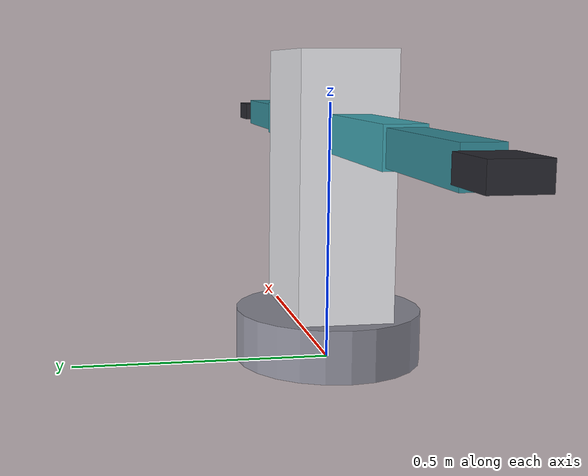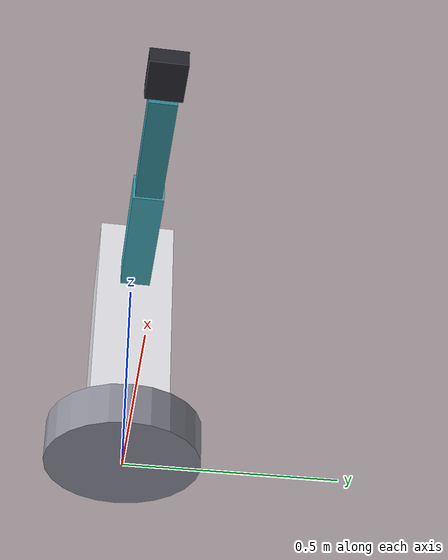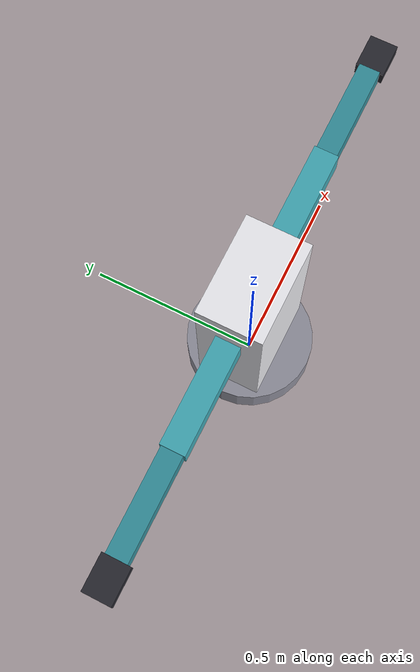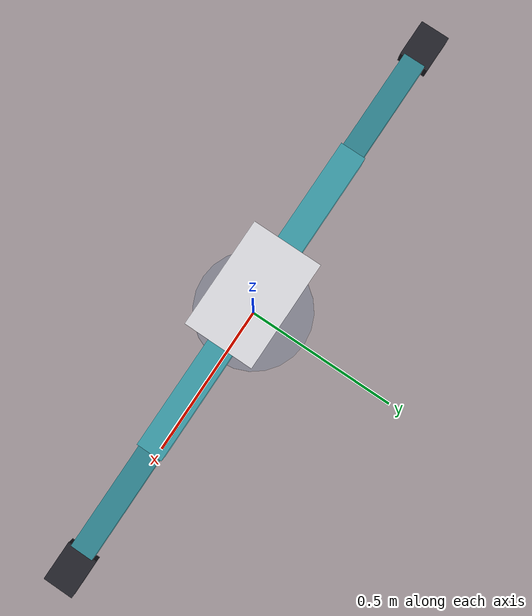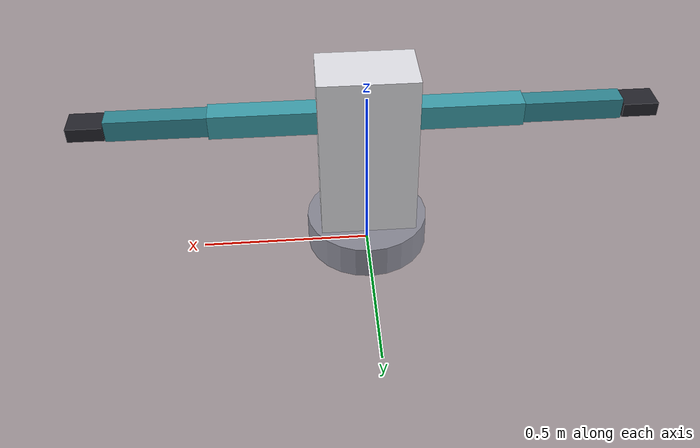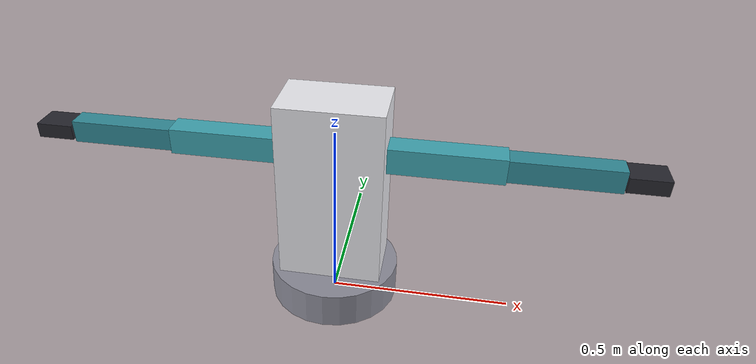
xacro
<?xml version="1.0"?>
<!-- Day 11 Investigation C — humanoid via Xacro macros (L/R arms). -->
<robot xmlns:xacro="http://www.ros.org/wiki/xacro" name="day11_humanoid_xacro">

  <xacro:include filename="arm_macro.xacro"/>

  <link name="base_link">
    <visual>
      <origin xyz="0 0 0.05" rpy="0 0 0"/>
      <geometry>
        <cylinder length="0.10" radius="0.18"/>
      </geometry>
      <material name="base_gray">
        <color rgba="0.55 0.55 0.60 1"/>
      </material>
    </visual>
  </link>

  <link name="torso">
    <visual>
      <origin xyz="0 0 0.25" rpy="0 0 0"/>
      <geometry>
        <box size="0.28 0.18 0.50"/>
      </geometry>
      <material name="torso_white">
        <color rgba="0.92 0.92 0.94 1"/>
      </material>
    </visual>
  </link>

  <joint name="base_to_torso" type="fixed">
    <parent link="base_link"/>
    <child link="torso"/>
    <origin xyz="0 0 0.10" rpy="0 0 0"/>
  </joint>

  <!-- Same macro twice — no copy-paste asymmetry. -->
  <xacro:humanoid_arm prefix="r" parent="torso" reflect="1"/>
  <xacro:humanoid_arm prefix="l" parent="torso" reflect="-1"/>

</robot>

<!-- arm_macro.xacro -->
<robot xmlns:xacro="http://www.ros.org/wiki/xacro">

  <!-- One arm macro; reflect=+1 right, reflect=-1 left (mirror Y). -->
  <xacro:macro name="humanoid_arm" params="prefix parent reflect:=1">

    <link name="${prefix}_upper_arm">
      <visual>
        <origin xyz="${0.15 * reflect} 0 0" rpy="0 0 0"/>
        <geometry>
          <box size="0.30 0.07 0.07"/>
        </geometry>
        <material name="${prefix}_arm">
          <color rgba="0.25 0.65 0.70 1"/>
        </material>
      </visual>
    </link>

    <joint name="${prefix}_shoulder" type="revolute">
      <parent link="${parent}"/>
      <child link="${prefix}_upper_arm"/>
      <origin xyz="${0.14 * reflect} 0 0.35" rpy="0 0 0"/>
      <axis xyz="0 1 0"/>
      <limit lower="-1.57" upper="1.57" effort="50" velocity="2.0"/>
    </joint>

    <link name="${prefix}_forearm">
      <visual>
        <origin xyz="${0.14 * reflect} 0 0" rpy="0 0 0"/>
        <geometry>
          <box size="0.28 0.06 0.06"/>
        </geometry>
        <material name="${prefix}_forearm">
          <color rgba="0.20 0.55 0.60 1"/>
        </material>
      </visual>
    </link>

    <joint name="${prefix}_elbow" type="revolute">
      <parent link="${prefix}_upper_arm"/>
      <child link="${prefix}_forearm"/>
      <origin xyz="${0.30 * reflect} 0 0" rpy="0 0 0"/>
      <axis xyz="0 1 0"/>
      <limit lower="0.0" upper="2.40" effort="40" velocity="2.0"/>
    </joint>

    <link name="${prefix}_hand">
      <visual>
        <origin xyz="${0.05 * reflect} 0 0" rpy="0 0 0"/>
        <geometry>
          <box size="0.10 0.08 0.04"/>
        </geometry>
        <material name="${prefix}_hand">
          <color rgba="0.15 0.15 0.18 1"/>
        </material>
      </visual>
    </link>

    <joint name="${prefix}_wrist" type="fixed">
      <parent link="${prefix}_forearm"/>
      <child link="${prefix}_hand"/>
      <origin xyz="${0.28 * reflect} 0 0" rpy="0 0 0"/>
    </joint>

  </xacro:macro>

</robot>
